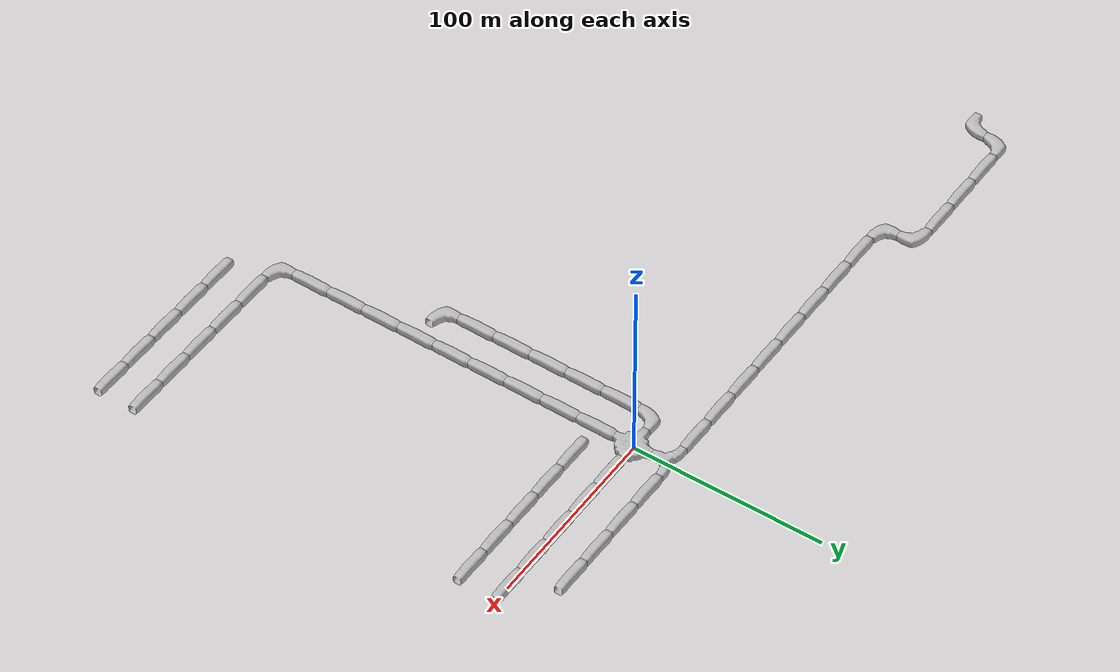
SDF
<sdf version="1.6">
 <world name="cave_32000_16">
  <include>
   <static>true</static>
   <name>cave_0_0</name>
   <pose>0 0 0 0 0 -1.5707963267948966</pose>
   <uri>model://cave_4way_20m</uri>
  </include>
  <include>
   <static>true</static>
   <name>cave_1_0</name>
   <pose>20 0 0 0 0 1.5707963267948966</pose>
   <uri>model://cave_straight_20m</uri>
  </include>
  <include>
   <static>true</static>
   <name>cave_2_0</name>
   <pose>40 0 0 0 0 1.5707963267948966</pose>
   <uri>model://cave_straight_20m</uri>
  </include>
  <include>
   <static>true</static>
   <name>cave_3_0</name>
   <pose>60 0 0 0 0 1.5707963267948966</pose>
   <uri>model://cave_straight_20m</uri>
  </include>
  <include>
   <static>true</static>
   <name>cave_4_0</name>
   <pose>80 0 0 0 0 1.5707963267948966</pose>
   <uri>model://cave_straight_20m</uri>
  </include>
  <include>
   <static>true</static>
   <name>cave_5_0</name>
   <pose>100 0 0 0 0 1.5707963267948966</pose>
   <uri>model://cave_straight_20m</uri>
  </include>
  <include>
   <static>true</static>
   <name>cave_5_-1</name>
   <pose>100 -20 0 0 0 1.5707963267948966</pose>
   <uri>model://cave_straight_20m</uri>
  </include>
  <include>
   <static>true</static>
   <name>cave_4_-1</name>
   <pose>80 -20 0 0 0 1.5707963267948966</pose>
   <uri>model://cave_straight_20m</uri>
  </include>
  <include>
   <static>true</static>
   <name>cave_3_-1</name>
   <pose>60 -20 0 0 0 1.5707963267948966</pose>
   <uri>model://cave_straight_20m</uri>
  </include>
  <include>
   <static>true</static>
   <name>cave_2_-1</name>
   <pose>40 -20 0 0 0 1.5707963267948966</pose>
   <uri>model://cave_straight_20m</uri>
  </include>
  <include>
   <static>true</static>
   <name>cave_1_-1</name>
   <pose>20 -20 0 0 0 1.5707963267948966</pose>
   <uri>model://cave_straight_20m</uri>
  </include>
  <include>
   <static>true</static>
   <name>cave_0_-1</name>
   <pose>0 -20 0 0 0 0.0</pose>
   <uri>model://cave_straight_20m</uri>
  </include>
  <include>
   <static>true</static>
   <name>cave_0_-2</name>
   <pose>0 -40 0 0 0 0.0</pose>
   <uri>model://cave_straight_20m</uri>
  </include>
  <include>
   <static>true</static>
   <name>cave_0_-3</name>
   <pose>0 -60 0 0 0 0.0</pose>
   <uri>model://cave_straight_20m</uri>
  </include>
  <include>
   <static>true</static>
   <name>cave_0_-4</name>
   <pose>0 -80 0 0 0 0.0</pose>
   <uri>model://cave_straight_20m</uri>
  </include>
  <include>
   <static>true</static>
   <name>cave_0_-5</name>
   <pose>0 -100 0 0 0 0.0</pose>
   <uri>model://cave_straight_20m</uri>
  </include>
  <include>
   <static>true</static>
   <name>cave_0_-6</name>
   <pose>0 -120 0 0 0 0.0</pose>
   <uri>model://cave_straight_20m</uri>
  </include>
  <include>
   <static>true</static>
   <name>cave_0_-7</name>
   <pose>0 -140 0 0 0 0.0</pose>
   <uri>model://cave_straight_20m</uri>
  </include>
  <include>
   <static>true</static>
   <name>cave_0_-8</name>
   <pose>0 -160 0 0 0 0.0</pose>
   <uri>model://cave_straight_20m</uri>
  </include>
  <include>
   <static>true</static>
   <name>cave_0_-9</name>
   <pose>0 -180 0 0 0 0.0</pose>
   <uri>model://cave_straight_20m</uri>
  </include>
  <include>
   <static>true</static>
   <name>cave_0_-10</name>
   <pose>0 -200 0 0 0 0.0</pose>
   <uri>model://cave_L_20m</uri>
  </include>
  <include>
   <static>true</static>
   <name>cave_1_-10</name>
   <pose>20 -200 0 0 0 1.5707963267948966</pose>
   <uri>model://cave_straight_20m</uri>
  </include>
  <include>
   <static>true</static>
   <name>cave_2_-10</name>
   <pose>40 -200 0 0 0 1.5707963267948966</pose>
   <uri>model://cave_straight_20m</uri>
  </include>
  <include>
   <static>true</static>
   <name>cave_3_-10</name>
   <pose>60 -200 0 0 0 1.5707963267948966</pose>
   <uri>model://cave_straight_20m</uri>
  </include>
  <include>
   <static>true</static>
   <name>cave_4_-10</name>
   <pose>80 -200 0 0 0 1.5707963267948966</pose>
   <uri>model://cave_straight_20m</uri>
  </include>
  <include>
   <static>true</static>
   <name>cave_5_-10</name>
   <pose>100 -200 0 0 0 1.5707963267948966</pose>
   <uri>model://cave_straight_20m</uri>
  </include>
  <include>
   <static>true</static>
   <name>cave_-1_0</name>
   <pose>-20 0 0 0 0 -1.5707963267948966</pose>
   <uri>model://cave_L_20m</uri>
  </include>
  <include>
   <static>true</static>
   <name>cave_-1_-1</name>
   <pose>-20 -20 0 0 0 0.0</pose>
   <uri>model://cave_straight_20m</uri>
  </include>
  <include>
   <static>true</static>
   <name>cave_-1_-2</name>
   <pose>-20 -40 0 0 0 0.0</pose>
   <uri>model://cave_straight_20m</uri>
  </include>
  <include>
   <static>true</static>
   <name>cave_-1_-3</name>
   <pose>-20 -60 0 0 0 0.0</pose>
   <uri>model://cave_straight_20m</uri>
  </include>
  <include>
   <static>true</static>
   <name>cave_-1_-4</name>
   <pose>-20 -80 0 0 0 0.0</pose>
   <uri>model://cave_straight_20m</uri>
  </include>
  <include>
   <static>true</static>
   <name>cave_-1_-5</name>
   <pose>-20 -100 0 0 0 0.0</pose>
   <uri>model://cave_straight_20m</uri>
  </include>
  <include>
   <static>true</static>
   <name>cave_-1_-6</name>
   <pose>-20 -120 0 0 0 0.0</pose>
   <uri>model://cave_L_20m</uri>
  </include>
  <include>
   <static>true</static>
   <name>cave_0_1</name>
   <pose>0 20 0 0 0 3.141592653589793</pose>
   <uri>model://cave_3way_20m</uri>
  </include>
  <include>
   <static>true</static>
   <name>cave_1_1</name>
   <pose>20 20 0 0 0 1.5707963267948966</pose>
   <uri>model://cave_straight_20m</uri>
  </include>
  <include>
   <static>true</static>
   <name>cave_2_1</name>
   <pose>40 20 0 0 0 1.5707963267948966</pose>
   <uri>model://cave_straight_20m</uri>
  </include>
  <include>
   <static>true</static>
   <name>cave_3_1</name>
   <pose>60 20 0 0 0 1.5707963267948966</pose>
   <uri>model://cave_straight_20m</uri>
  </include>
  <include>
   <static>true</static>
   <name>cave_4_1</name>
   <pose>80 20 0 0 0 1.5707963267948966</pose>
   <uri>model://cave_straight_20m</uri>
  </include>
  <include>
   <static>true</static>
   <name>cave_-1_1</name>
   <pose>-20 20 0 0 0 1.5707963267948966</pose>
   <uri>model://cave_straight_20m</uri>
  </include>
  <include>
   <static>true</static>
   <name>cave_-2_1</name>
   <pose>-40 20 0 0 0 1.5707963267948966</pose>
   <uri>model://cave_straight_20m</uri>
  </include>
  <include>
   <static>true</static>
   <name>cave_-3_1</name>
   <pose>-60 20 0 0 0 1.5707963267948966</pose>
   <uri>model://cave_straight_20m</uri>
  </include>
  <include>
   <static>true</static>
   <name>cave_-4_1</name>
   <pose>-80 20 0 0 0 1.5707963267948966</pose>
   <uri>model://cave_straight_20m</uri>
  </include>
  <include>
   <static>true</static>
   <name>cave_-5_1</name>
   <pose>-100 20 0 0 0 1.5707963267948966</pose>
   <uri>model://cave_straight_20m</uri>
  </include>
  <include>
   <static>true</static>
   <name>cave_-6_1</name>
   <pose>-120 20 0 0 0 1.5707963267948966</pose>
   <uri>model://cave_straight_20m</uri>
  </include>
  <include>
   <static>true</static>
   <name>cave_-7_1</name>
   <pose>-140 20 0 0 0 1.5707963267948966</pose>
   <uri>model://cave_straight_20m</uri>
  </include>
  <include>
   <static>true</static>
   <name>cave_-8_1</name>
   <pose>-160 20 0 0 0 1.5707963267948966</pose>
   <uri>model://cave_straight_20m</uri>
  </include>
  <include>
   <static>true</static>
   <name>cave_-9_1</name>
   <pose>-180 20 0 0 0 0.0</pose>
   <uri>model://cave_L_20m</uri>
  </include>
  <include>
   <static>true</static>
   <name>cave_-9_2</name>
   <pose>-180 40 0 0 0 3.141592653589793</pose>
   <uri>model://cave_L_20m</uri>
  </include>
  <include>
   <static>true</static>
   <name>cave_-10_2</name>
   <pose>-200 40 0 0 0 1.5707963267948966</pose>
   <uri>model://cave_straight_20m</uri>
  </include>
  <include>
   <static>true</static>
   <name>cave_-11_2</name>
   <pose>-220 40 0 0 0 1.5707963267948966</pose>
   <uri>model://cave_straight_20m</uri>
  </include>
  <include>
   <static>true</static>
   <name>cave_-12_2</name>
   <pose>-240 40 0 0 0 1.5707963267948966</pose>
   <uri>model://cave_straight_20m</uri>
  </include>
  <include>
   <static>true</static>
   <name>cave_-13_2</name>
   <pose>-260 40 0 0 0 -1.5707963267948966</pose>
   <uri>model://cave_L_20m</uri>
  </include>
  <include>
   <static>true</static>
   <name>cave_-13_1</name>
   <pose>-260 20 0 0 0 1.5707963267948966</pose>
   <uri>model://cave_L_20m</uri>
  </include>
  <include>
   <static>true</static>
   <name>cave_1_-11</name>
   <pose>20 -220 0 0 0 1.5707963267948966</pose>
   <uri>model://cave_straight_20m</uri>
  </include>
  <include>
   <static>true</static>
   <name>cave_2_-11</name>
   <pose>40 -220 0 0 0 1.5707963267948966</pose>
   <uri>model://cave_straight_20m</uri>
  </include>
  <include>
   <static>true</static>
   <name>cave_3_-11</name>
   <pose>60 -220 0 0 0 1.5707963267948966</pose>
   <uri>model://cave_straight_20m</uri>
  </include>
  <include>
   <static>true</static>
   <name>cave_4_-11</name>
   <pose>80 -220 0 0 0 1.5707963267948966</pose>
   <uri>model://cave_straight_20m</uri>
  </include>
  <include>
   <static>true</static>
   <name>cave_5_-11</name>
   <pose>100 -220 0 0 0 1.5707963267948966</pose>
   <uri>model://cave_straight_20m</uri>
  </include>
 </world>
</sdf>
